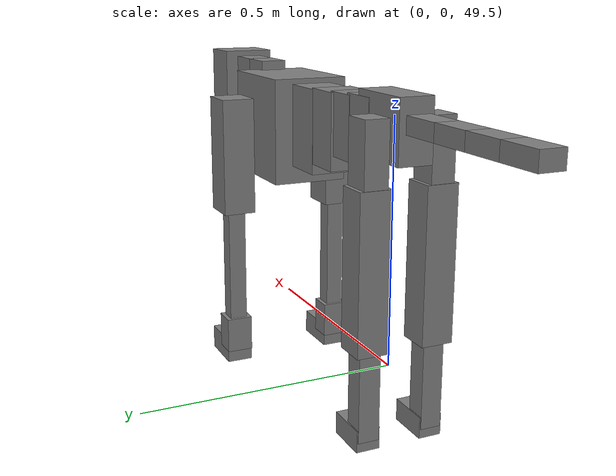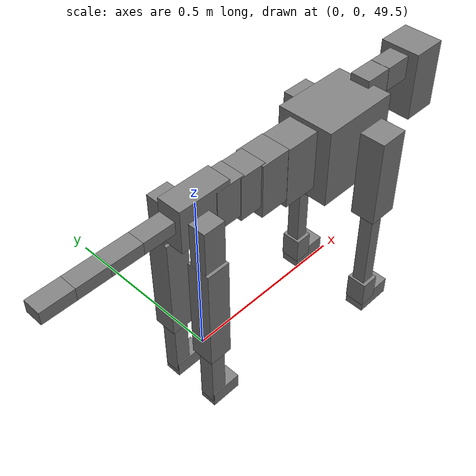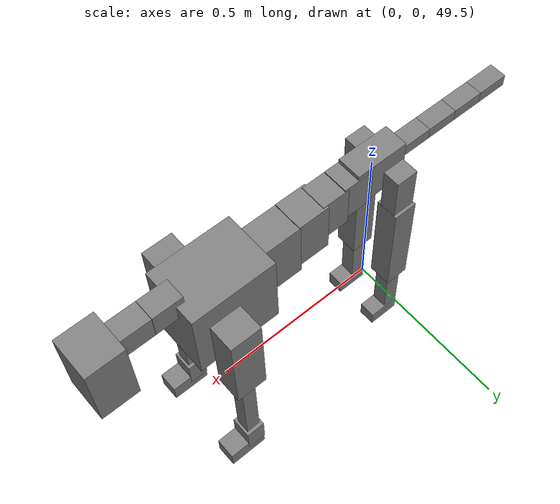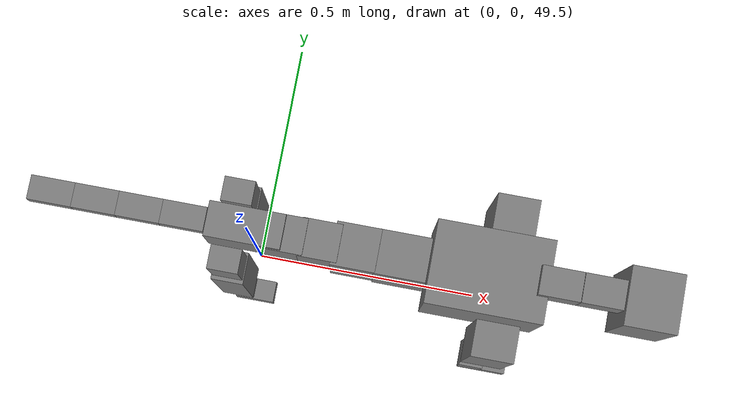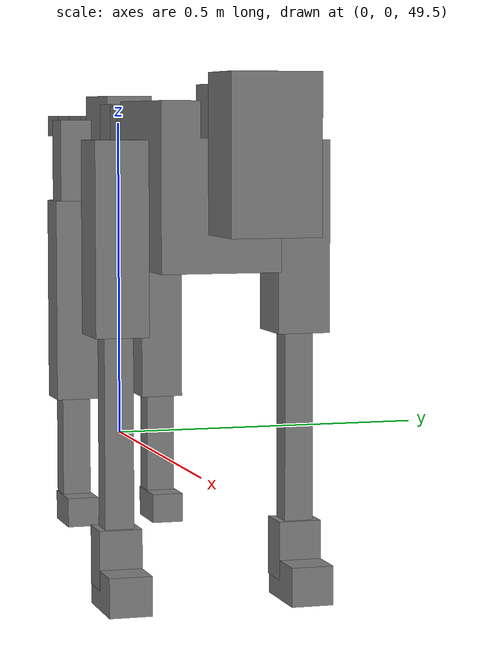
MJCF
<mujoco model="dog">

    <default>
        <joint armature="0.02" stiffness="1" damping="0.2" limited="true"/>
        <geom condim="3" friction="1 0.05 0.05" margin="0.01"/>
        <motor ctrllimited="true" ctrlrange="-1.0 1.0" forcelimited="true" gear="50"/>
    </default>

    <compiler inertiafromgeom="true" angle="radian"/>

    <option timestep="0.016" iterations="50" tolerance="1e-10" solver="Newton" jacobian="dense" cone="pyramidal"/>

    <size nconmax="20000" njmax="60000" nstack="5000000"/>
    <visual>
        <map force="0.1" zfar="30"/>
        <rgba haze="0.15 0.25 0.35 1"/>
        <quality shadowsize="2048"/>
        <global offwidth="800" offheight="800"/>
    </visual>

    <asset>
        <texture type="skybox" builtin="gradient" rgb1="0.3 0.5 0.7" rgb2="0 0 0" width="512" height="512"/>
        <texture name="texplane" type="2d" builtin="checker" rgb1=".2 .3 .4" rgb2=".1 0.15 0.2" width="512" height="512"
                 mark="cross" markrgb=".8 .8 .8"/>
        <texture name="texgeom" type="cube" builtin="flat" mark="cross" width="127" height="1278" rgb1="0.8 0.6 0.4"
                 rgb2="0.8 0.6 0.4" markrgb="1 1 1" random="0.01"/>

        <material name="matplane" reflectance="0.3" texture="texplane" texrepeat="1 1" texuniform="true"/>
        <material name="matgeom" texture="texgeom" texuniform="true" rgba="0.8 0.6 .4 1"/>
    </asset>

    <worldbody>
        <geom name="floor" pos="0 0 0" size="0 0 .25" type="plane" material="matplane" condim="3"/>

        <light directional="false" diffuse=".2 .2 .2" specular="0 0 0" pos="0 0 5" dir="0 0 -1" castshadow="false"/>
        <light mode="targetbodycom" target="torso" directional="false" diffuse=".8 .8 .8" specular="0.3 0.3 0.3"
               pos="0 0 4.0" dir="0 0 -1"/>

        <body name="root" pos="0 0 50">
            <freejoint name="root_1"/>
            <geom type="box" pos="0 0 -0.02" size="0.0774  0.0358  0.063" density="2030"/>

            <body name="spine1" pos="0.054 0 0">
                <joint name="spine1_y" axis="0 1 0" range="0 0.7" limited="true"/>
                <geom type="box" pos="0.02375 0 -0.03" size="0.04375  0.0375  0.05985" density="2030"/>

                <body name="spine2" pos="0.0612 0 0">
                    <joint name="spine2_y" axis="0 1 0" range="-0.15 0.15" limited="true"/>
                    <geom type="box" pos="0.03555  0  -0.04" size="0.04055  0.039  0.06615" density="2030"/>

                    <body name="spine3" pos="0.0730 0 0">
                        <joint name="spine3_y" axis="0 1 0" range="-0.15 0.15" limited="true"/>
                        <geom type="box" pos="0.03555  0  -0.057" size="0.04555  0.0445  0.081" density="2030"/>

                        <body name="spine4" pos="0.0780 0 0">
                            <joint name="spine4_y" axis="0 1 0" range="-0.15 0.15" limited="true"/>
                            <geom type="box" pos="0.05265  0  -0.07" size="0.05265  0.045  0.09135" density="2030"/>

                            <body name="torso" pos="0.1082 0 0">
                                <joint name="torso_y" axis="0 1 0" range="-0.15 0.15" limited="true"/>
                                <geom type="box" pos="0.11925  0  -0.085" size="0.11925  0.085  0.11745"
                                      density="2030"/>

                                <body name="neck1" pos="0.2160  0   0.0180">
                                    <joint name="neck1_y" axis="0 1 0" range="-1.2  -1" limited="true"/>
                                    <geom type="box" pos="0.0423  0  0" size="0.0423  0.03  0.036" density="2325"/>

                                    <body name="neck2" pos="0.0853  0  0">
                                        <joint name="neck2_y" axis="0 1 0" range="0.1  0" limited="true"/>
                                        <geom type="box" pos="0.0423  0  0" size="0.0423  0.03  0.036" density="2325"/>

                                        <body name="head" pos="0.0853  0  0">
                                            <joint name="head_y" axis="0 1 0" range="-0.3  -0.2" limited="true"/>
                                            <geom type="box" pos="0.0531  0  -0.055" size="0.0531  0.06  0.1044"
                                                  density="4030"/>

                                        </body>
                                    </body>
                                </body>

                                <body name="front_shoulder" pos="0.156  0   -0.0480">
                                    <joint name="front_shoulder_y" axis="0 1 0" range="-1 1.5" limited="true"/>
                                    <geom type="box" pos="0 0.13 -0.1082" size="0.0439  0.0375  0.1349" density="1158"/>
                                    <geom type="box" pos="0 -0.13 -0.1082" size="0.0439  0.0375  0.1349"
                                          density="1158"/>

                                    <body name="front_elbow" pos="0  0  -0.2164">
                                        <joint name="front_elbow_y" axis="0 1 0" range="-2 0" limited="true"/>
                                        <geom type="box" pos="0 0.13 -0.1540" size="0.0201  0.0205  0.1540"
                                              density="1081"/>
                                        <geom type="box" pos="0 -0.13 -0.1540" size="0.0201  0.0205  0.1540"
                                              density="1081"/>

                                        <body name="front_wrist" pos="0  0  -0.3080">
                                            <joint name="front_wrist_y" axis="0 1 0" range="-0.2 0" limited="true"/>
                                            <geom type="box" pos="0 0.13 -0.0283" size="0.0273  0.0304  0.0415"
                                                  density="1664"/>
                                            <geom type="box" pos="0 -0.13 -0.0283" size="0.0273  0.0304  0.0415"
                                                  density="1664"/>

                                            <body name="front_finger_end" pos="0  0  -0.0567">
                                                <joint name="front_finger_y" axis="0 1 0" range="-0.4 1"
                                                       limited="true"/>
                                                <geom type="box" pos="0.0301  0.13  -0.0127"
                                                      size="0.0553  0.0301  0.0277" density="1515"/>
                                                <geom type="box" pos="0.0301  -0.13  -0.0127"
                                                      size="0.0553  0.0301  0.0277" density="1515"/>

                                            </body>

                                        </body>
                                    </body>
                                </body>

                            </body>
                        </body>
                    </body>
                </body>
            </body>

            <body name="back_hip" pos="-0.03 0 -0.018">
                <joint name="back_hip_y" axis="0 1 0" range="-1.5 0.3" limited="true"/>
                <geom type="box" pos="0 0.07 -0.0609" size="0.0318  0.0250  0.0837" density="1154"/>
                <geom type="box" pos="0 -0.07 -0.0609" size="0.0318  0.0250  0.0837" density="1154"/>

                <body name="back_knee" pos="0  0  -0.1218">
                    <joint name="back_knee_y" axis="0 1 0" range="0 2.8" limited="true"/>
                    <geom type="box" pos="0 0.07 -0.1443" size="0.0340  0.0335  0.1599" density="1227"/>
                    <geom type="box" pos="0 -0.07 -0.1443" size="0.0340  0.0335  0.1599" density="1227"/>

                    <body name="back_ankle" pos="0  0  -0.2887">
                        <joint name="back_ankle_y" axis="0 1 0" range="-2.2 0" limited="true"/>
                        <geom type="box" pos="0 0.07 -0.0930" size="0.0224  0.0224  0.1042" density="1284"/>
                        <geom type="box" pos="0 -0.07 -0.0930" size="0.0224  0.0224  0.1042" density="1284"/>

                        <body name="back_toe_end" pos="0  0  -0.1860">
                            <joint name="back_toe_y" axis="0 1 0" range="-0.4 1" limited="true"/>
                            <geom type="box" pos="0.0246  0.07  -0.0080" size="0.0451  0.0246  0.0230" density="1515"/>
                            <geom type="box" pos="0.0246  -0.07  -0.0080" size="0.0451  0.0246  0.0230" density="1515"/>

                        </body>
                    </body>
                </body>
            </body>

            <body name="tail1" pos="-0.074 0 -0.006">
                <joint name="tail1_y" axis="0 1 0" range="-0.2 0.2" limited="true"/>
                <geom type="box" pos="-0.0536  0  0" size="0.045  0.025  0.0175" density="1587"/>

                <body name="tail2" pos="-0.09 0 0">
                    <joint name="tail2_y" axis="0 1 0" range="-0.2 0.2" limited="true"/>
                    <geom type="box" pos="-0.0536  0  0" size="0.045  0.025  0.0175" density="1587"/>

                    <body name="tail3" pos="-0.09 0 0">
                        <joint name="tail3_y" axis="0 1 0" range="-0.2 0.2" limited="true"/>
                        <geom type="box" pos="-0.0536  0  0" size="0.045  0.025  0.0175" density="1587"/>

                        <body name="tail4" pos="-0.09 0 0">
                            <joint name="tail4_y" axis="0 1 0" range="-0.2 0.2" limited="true"/>
                            <geom type="box" pos="-0.0536  0  0" size="0.045  0.025  0.0175" density="1587"/>

                        </body>
                    </body>
                </body>
            </body>
        </body>
    </worldbody>

    <actuator>
        <motor joint="spine1_y" forcerange="-150 150     "/>
        <motor joint="spine2_y" forcerange="-150 150     "/>
        <motor joint="spine3_y" forcerange="-150 150     "/>
        <motor joint="spine4_y" forcerange="-150 150     "/>
        <motor joint="torso_y" forcerange="-150 150     "/>
        <motor joint="neck1_y" forcerange="-100 100       "/>
        <motor joint="neck2_y" forcerange="-100 100       "/>
        <motor joint="head_y" forcerange="-150 150       "/>
        <motor joint="front_shoulder_y" forcerange="-173.12 177.06"/>
        <motor joint="front_elbow_y" forcerange="-124.82 124.63"/>
        <motor joint="front_wrist_y" forcerange="-101.67 141.37"/>
        <motor joint="front_finger_y" forcerange="-71.01 49.72"/>
        <motor joint="back_hip_y" forcerange="-314.49 218.51"/>
        <motor joint="back_knee_y" forcerange="-320.79 366.38"/>
        <motor joint="back_angle_y" forcerange="-172.75 86.40"/>
        <motor joint="back_toe_y" forcerange="-95.91 20.70"/>
        <motor joint="tail1_y" forcerange="-50 50     "/>
        <motor joint="tail2_y" forcerange="-50 50     "/>
        <motor joint="tail3_y" forcerange="-50 50     "/>
        <motor joint="tail4_y" forcerange="-50 50     "/>
    </actuator>
</mujoco>
